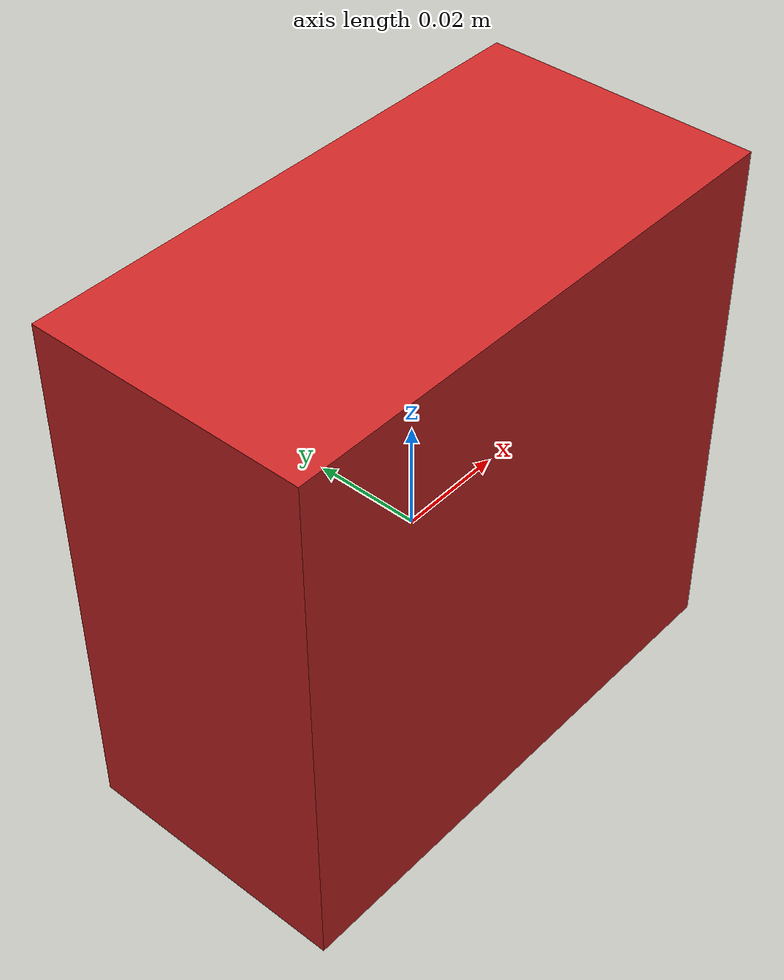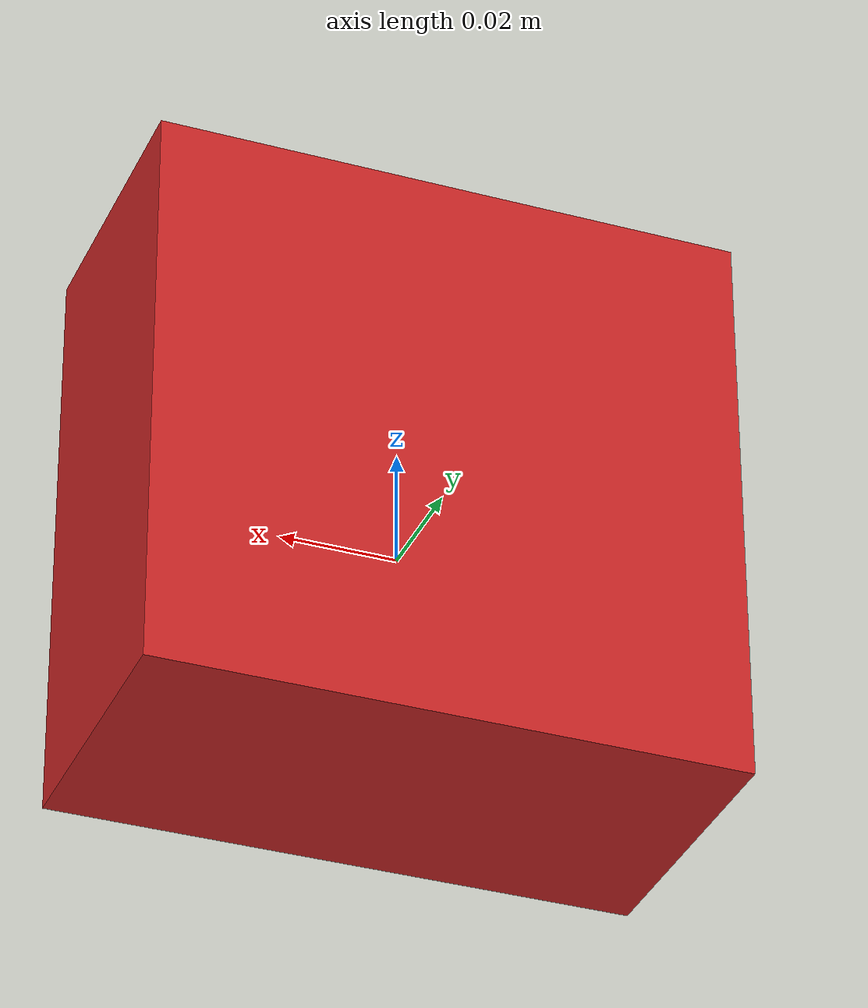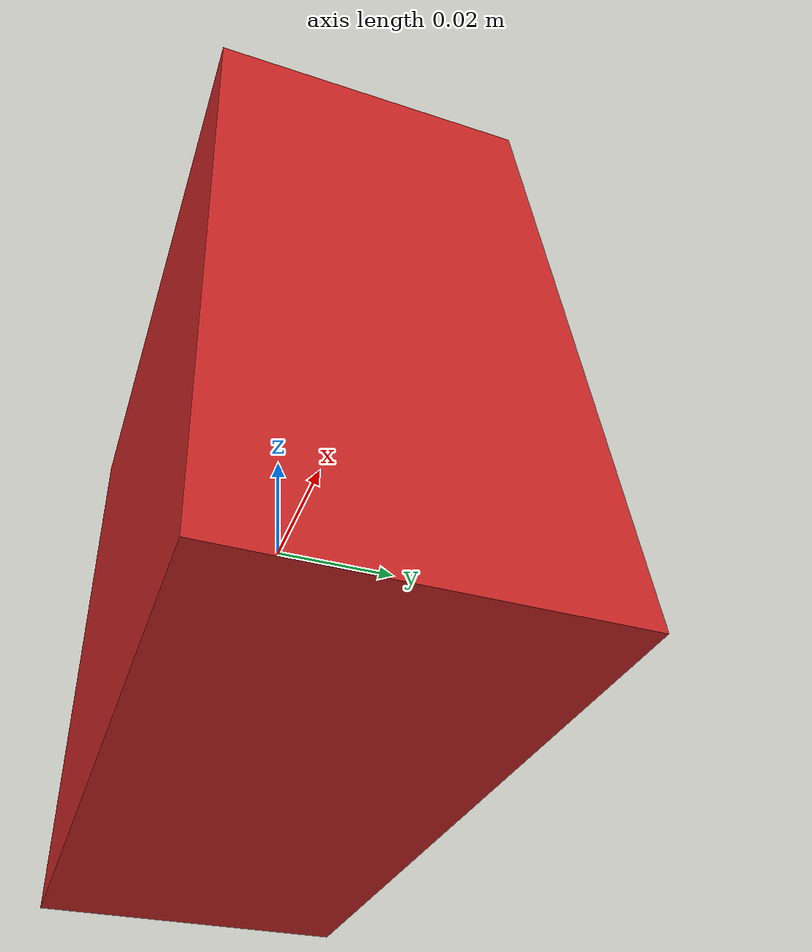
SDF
<?xml version="1.0" ?>
<sdf version="1.4">
  <model name="wifi_ap">
    <static>1</static>
    <link name="wifi_ap_link">
      <visual name="wifi_ap_visual">
        <pose>0. 0. 0.0075 0. 0. 0.</pose>
        <geometry>
          <box>
            <size>0.1 0.05 0.1</size>
          </box>
        </geometry>
        <material>
          <script>
            <uri>file://media/materials/scripts/gazebo.material</uri>
            <name>Gazebo/Red</name>
          </script>
        </material>
      </visual>
      <velocity_decay>
        <linear>0.</linear>
        <angular>0.</angular>
      </velocity_decay>
      <self_collide>0</self_collide>
      <kinematic>0</kinematic>
      <gravity>1</gravity>
    </link>
     <plugin filename="libgazebo_wifi_ap.so" name="gazebo_wifi_ap">
        <update_rate>2.0</update_rate>
        <robot_model>reemc_full</robot_model>
        <topic>routerManagerWifiScan</topic>
        <max_value>-10.0</max_value>
      </plugin>
  </model>
</sdf>
